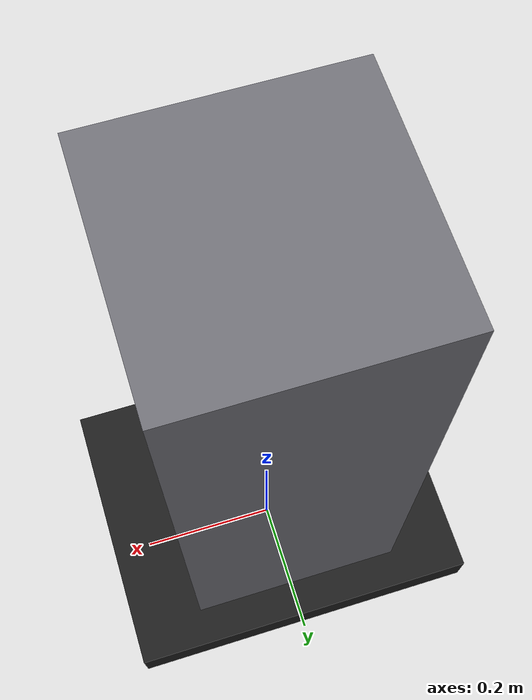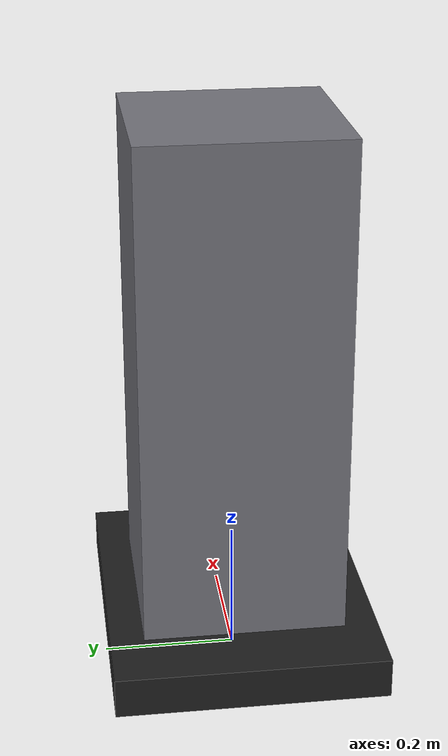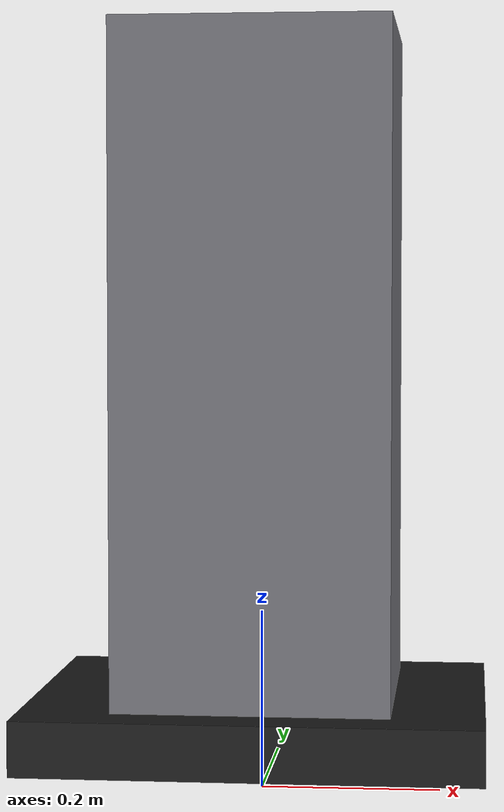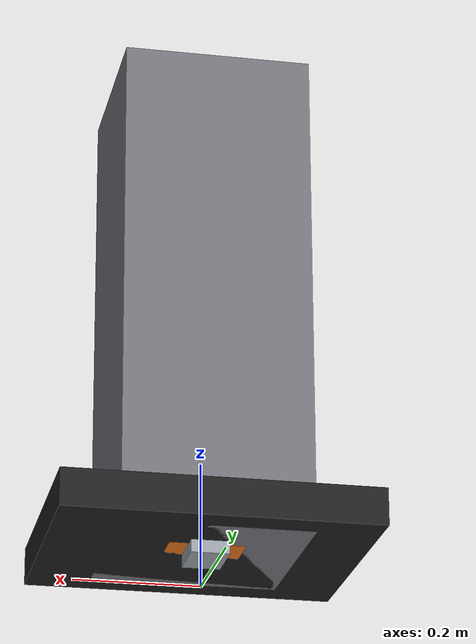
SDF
<?xml version="1.0" ?>
<sdf version="1.9">
  <model name="industrial_cell">
    <pose>0 0 0.05 0 0 0</pose>
    <self_collide>false</self_collide>

    <link name="base_link">
      <inertial>
        <mass>40</mass>
        <inertia><ixx>2.5</ixx><iyy>2.5</iyy><izz>1.5</izz></inertia>
      </inertial>
      <visual name="visual">
        <geometry><box><size>0.3 0.3 0.8</size></box></geometry>
        <pose>0 0 0.4 0 0 0</pose>
        <material><ambient>0.45 0.45 0.48 1</ambient><diffuse>0.45 0.45 0.48 1</diffuse></material>
      </visual>
      <collision name="collision">
        <geometry><box><size>0.3 0.3 0.8</size></box></geometry>
        <pose>0 0 0.4 0 0 0</pose>
      </collision>
    </link>

    <link name="tcp_link">
      <inertial>
        <mass>2</mass>
        <inertia><ixx>0.02</ixx><iyy>0.02</iyy><izz>0.02</izz></inertia>
      </inertial>
      <visual name="visual">
        <geometry><box><size>0.12 0.12 0.1</size></box></geometry>
        <pose>0 0 0.05 0 0 0</pose>
        <material><ambient>0.9 0.45 0.1 1</ambient><diffuse>0.9 0.45 0.1 1</diffuse></material>
      </visual>
      <collision name="collision">
        <geometry><box><size>0.12 0.12 0.1</size></box></geometry>
        <pose>0 0 0.05 0 0 0</pose>
      </collision>
    </link>

    <link name="conveyor_link">
      <inertial>
        <mass>5</mass>
        <inertia><ixx>0.1</ixx><iyy>0.1</iyy><izz>0.1</izz></inertia>
      </inertial>
      <visual name="visual">
        <geometry><box><size>0.5 0.4 0.06</size></box></geometry>
        <pose>0 0 0.03 0 0 0</pose>
        <material><ambient>0.12 0.12 0.12 1</ambient><diffuse>0.12 0.12 0.12 1</diffuse></material>
      </visual>
    </link>

    <link name="gripper_finger">
      <inertial>
        <mass>0.5</mass>
        <inertia><ixx>0.001</ixx><iyy>0.001</iyy><izz>0.001</izz></inertia>
      </inertial>
      <visual name="visual">
        <geometry><box><size>0.06 0.08 0.12</size></box></geometry>
        <pose>0 0.04 0.04 0 0 0</pose>
        <material><ambient>0.6 0.62 0.65 1</ambient><diffuse>0.6 0.62 0.65 1</diffuse></material>
      </visual>
    </link>

    <joint name="arm_slide_joint" type="prismatic">
      <parent>base_link</parent>
      <child>tcp_link</child>
      <pose>0 0 0.85 0 0 0</pose>
      <axis>
        <xyz>1 0 0</xyz>
        <limit><lower>0</lower><upper>1</upper></limit>
        <dynamics><damping>0.5</damping></dynamics>
      </axis>
    </joint>

    <joint name="conveyor_joint" type="revolute">
      <parent>base_link</parent>
      <child>conveyor_link</child>
      <pose>0.6 0 0.15 0 0 0</pose>
      <axis>
        <xyz>0 1 0</xyz>
        <limit><lower>-6.28</lower><upper>6.28</upper></limit>
        <dynamics><damping>1.0</damping></dynamics>
      </axis>
    </joint>

    <joint name="gripper_joint" type="prismatic">
      <parent>tcp_link</parent>
      <child>gripper_finger</child>
      <pose>0 0 0.1 0 0 0</pose>
      <axis>
        <xyz>0 1 0</xyz>
        <limit><lower>0</lower><upper>0.08</upper></limit>
        <dynamics><damping>0.2</damping></dynamics>
      </axis>
    </joint>

    <plugin filename="gz-sim-joint-state-publisher-system" name="gz::sim::systems::JointStatePublisher">
      <joint_name>arm_slide_joint</joint_name>
      <joint_name>conveyor_joint</joint_name>
      <joint_name>gripper_joint</joint_name>
    </plugin>

    <plugin filename="gz-sim-joint-controller-system" name="gz::sim::systems::JointController">
      <joint_name>arm_slide_joint</joint_name>
      <topic>/model/industrial_cell/joint/arm_slide_joint/cmd_vel</topic>
      <initial_velocity>0</initial_velocity>
    </plugin>

    <plugin filename="gz-sim-joint-controller-system" name="gz::sim::systems::JointController">
      <joint_name>conveyor_joint</joint_name>
      <topic>/model/industrial_cell/joint/conveyor_joint/cmd_vel</topic>
      <initial_velocity>0</initial_velocity>
    </plugin>

    <plugin filename="gz-sim-joint-controller-system" name="gz::sim::systems::JointController">
      <joint_name>gripper_joint</joint_name>
      <topic>/model/industrial_cell/joint/gripper_joint/cmd_vel</topic>
      <initial_velocity>0</initial_velocity>
    </plugin>
  </model>
</sdf>
